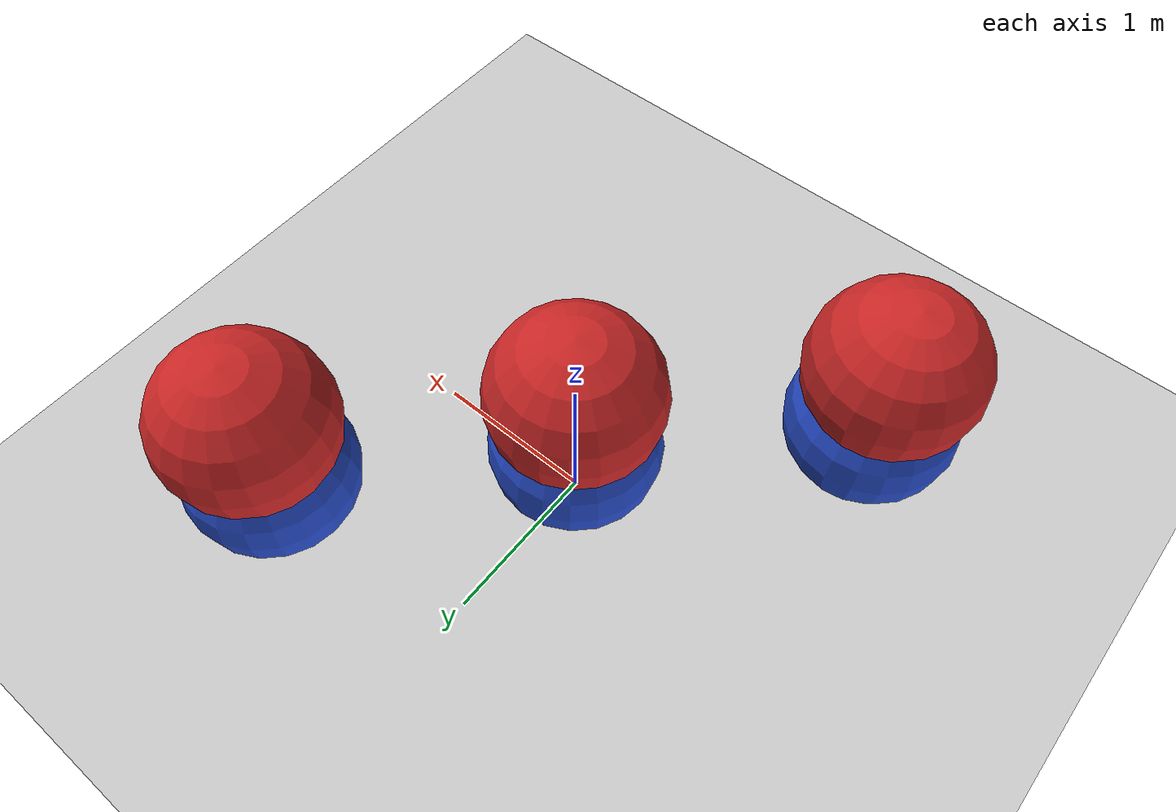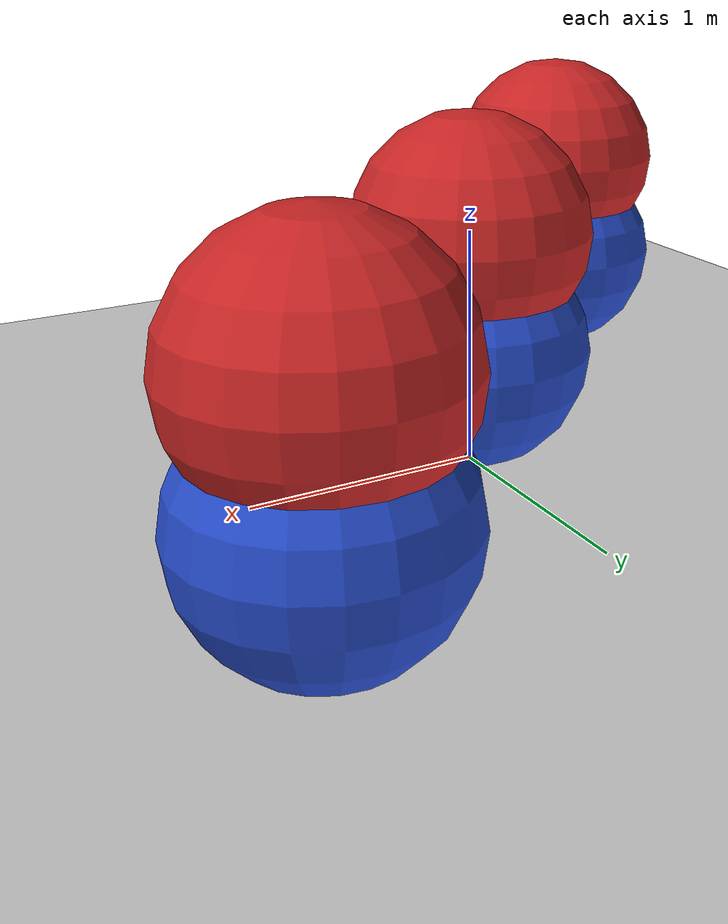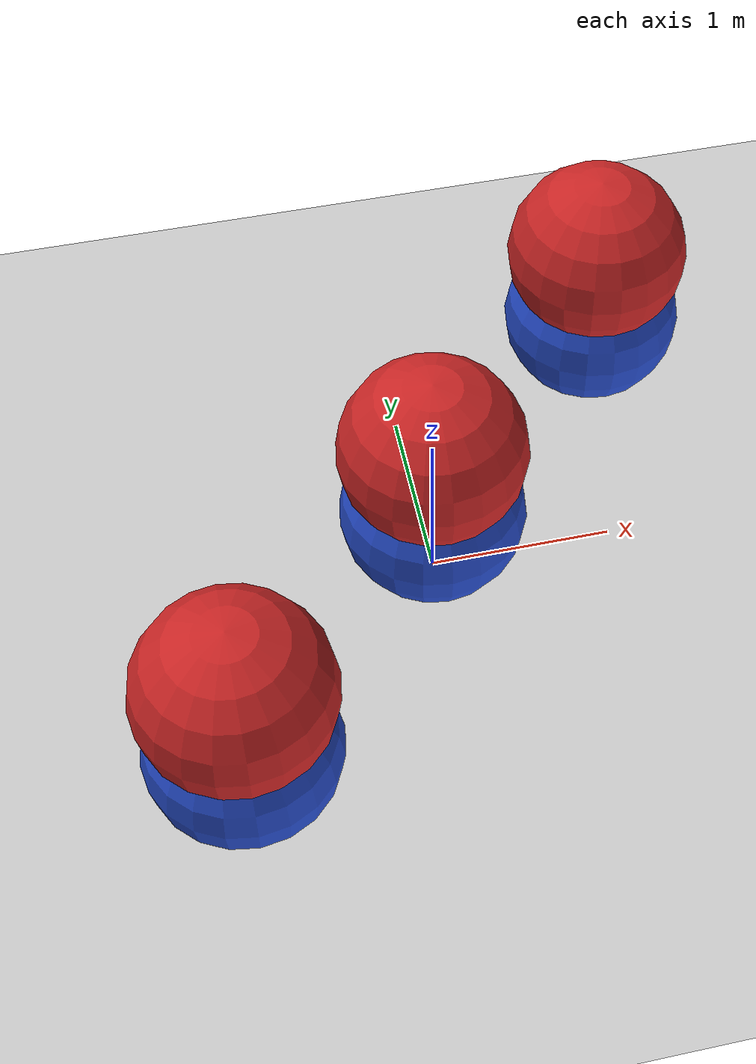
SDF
<?xml version="1.0"?>
<sdf version="1.6">
  <world name='default'>
    <!-- descend slowly -->
    <gravity>0 0 -0.1</gravity>
    <include>
      <uri>model://ground_plane</uri>
    </include>
    <include>
      <uri>model://sun</uri>
    </include>

    <model name='bottom_sphere_1'>
      <static>true</static>
      <allow_auto_disable>false</allow_auto_disable>
      <pose>-1.2 -1.2 0.5 0 0 0</pose>
      <link name='bottom_link'>
        <collision name='bottom_collision'>
          <geometry>
            <sphere>
              <radius>0.5</radius>
            </sphere>
          </geometry>
          <surface>
            <contact>
              <ode>
                <max_vel>0</max_vel>
              </ode>
            </contact>
          </surface>
        </collision>
        <visual name='bottom_visual'>
          <geometry>
            <sphere>
              <radius>0.5</radius>
            </sphere>
          </geometry>
          <material>
            <script>
              <uri>file://media/materials/scripts/gazebo.material</uri>
              <name>Gazebo/Blue</name>
            </script>
          </material>
        </visual>
      </link>
    </model>
    <model name="top_sphere_1">
      <static>false</static>
      <allow_auto_disable>false</allow_auto_disable>
      <pose>-1.2 -1.2 1.0 0 0 0</pose>
      <link name='top_link'>
        <collision name='top_collision'>
          <geometry>
            <sphere>
              <radius>0.5</radius>
            </sphere>
          </geometry>
          <surface>
            <contact>
              <ode>
                <max_vel>0</max_vel>
              </ode>
            </contact>
          </surface>
        </collision>
        <visual name='top_visual'>
          <geometry>
            <sphere>
              <radius>0.5</radius>
            </sphere>
          </geometry>
          <material>
            <script>
              <uri>file://media/materials/scripts/gazebo.material</uri>
              <name>Gazebo/Red</name>
            </script>
          </material>
        </visual>
      </link>
    </model>

    <model name='bottom_sphere_2'>
      <static>true</static>
      <allow_auto_disable>false</allow_auto_disable>
      <pose>0 0 0.5 0 0 0</pose>
      <link name='bottom_link'>
        <collision name='bottom_collision'>
          <geometry>
            <sphere>
              <radius>0.5</radius>
            </sphere>
          </geometry>
          <surface>
            <contact>
              <ode>
                <max_vel>1</max_vel>
              </ode>
            </contact>
          </surface>
        </collision>
        <visual name='bottom_visual'>
          <geometry>
            <sphere>
              <radius>0.5</radius>
            </sphere>
          </geometry>
          <material>
            <script>
              <uri>file://media/materials/scripts/gazebo.material</uri>
              <name>Gazebo/Blue</name>
            </script>
          </material>
        </visual>
      </link>
    </model>
    <model name="top_sphere_2">
      <static>false</static>
      <allow_auto_disable>false</allow_auto_disable>
      <pose>0 0 1.0 0 0 0</pose>
      <link name='top_link'>
        <collision name='top_collision'>
          <geometry>
            <sphere>
              <radius>0.5</radius>
            </sphere>
          </geometry>
          <surface>
            <contact>
              <ode>
                <max_vel>1</max_vel>
              </ode>
            </contact>
          </surface>
        </collision>
        <visual name='top_visual'>
          <geometry>
            <sphere>
              <radius>0.5</radius>
            </sphere>
          </geometry>
          <material>
            <script>
              <uri>file://media/materials/scripts/gazebo.material</uri>
              <name>Gazebo/Red</name>
            </script>
          </material>
        </visual>
      </link>
    </model>

    <model name='bottom_sphere_3'>
      <static>true</static>
      <allow_auto_disable>false</allow_auto_disable>
      <pose>1.2 1.2 0.5 0 0 0</pose>
      <link name='bottom_link'>
        <collision name='bottom_collision'>
          <geometry>
            <sphere>
              <radius>0.5</radius>
            </sphere>
          </geometry>
          <surface>
            <contact>
              <ode>
                <max_vel>10</max_vel>
              </ode>
            </contact>
          </surface>
        </collision>
        <visual name='bottom_visual'>
          <geometry>
            <sphere>
              <radius>0.5</radius>
            </sphere>
          </geometry>
          <material>
            <script>
              <uri>file://media/materials/scripts/gazebo.material</uri>
              <name>Gazebo/Blue</name>
            </script>
          </material>
        </visual>
      </link>
    </model>
    <model name="top_sphere_3">
      <static>false</static>
      <allow_auto_disable>false</allow_auto_disable>
      <pose>1.2 1.2 1.0 0 0 0</pose>
      <link name='top_link'>
        <collision name='top_collision'>
          <geometry>
            <sphere>
              <radius>0.5</radius>
            </sphere>
          </geometry>
          <surface>
            <contact>
              <ode>
                <max_vel>10</max_vel>
              </ode>
            </contact>
          </surface>
        </collision>
        <visual name='top_visual'>
          <geometry>
            <sphere>
              <radius>0.5</radius>
            </sphere>
          </geometry>
          <material>
            <script>
              <uri>file://media/materials/scripts/gazebo.material</uri>
              <name>Gazebo/Red</name>
            </script>
          </material>
        </visual>
      </link>
    </model>
  </world>
</sdf>
